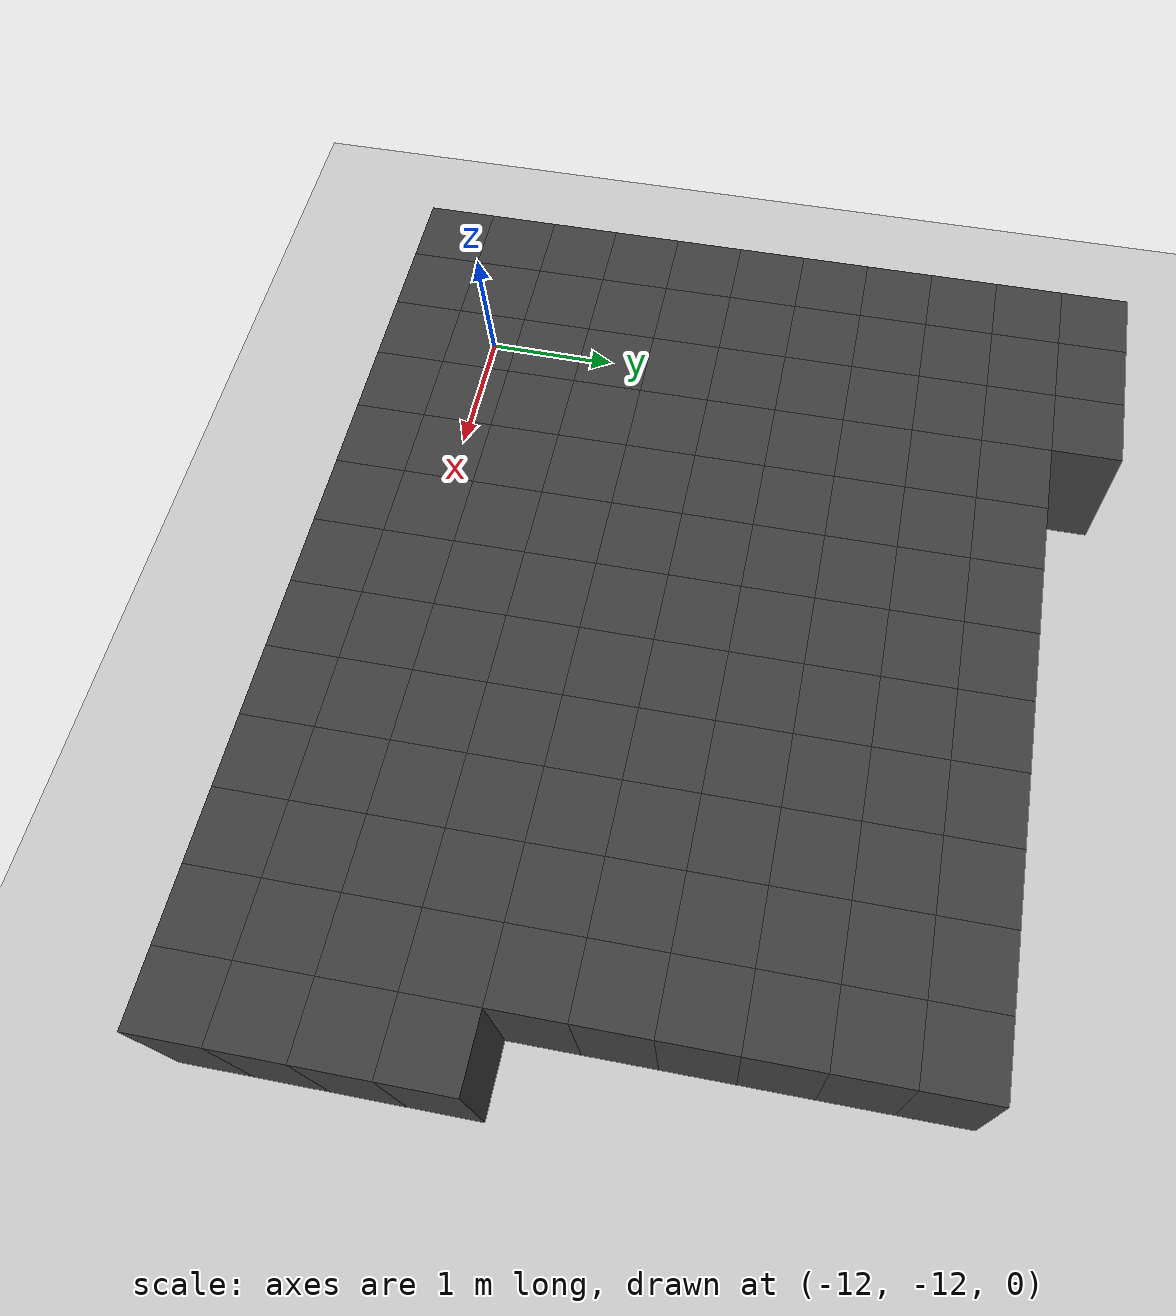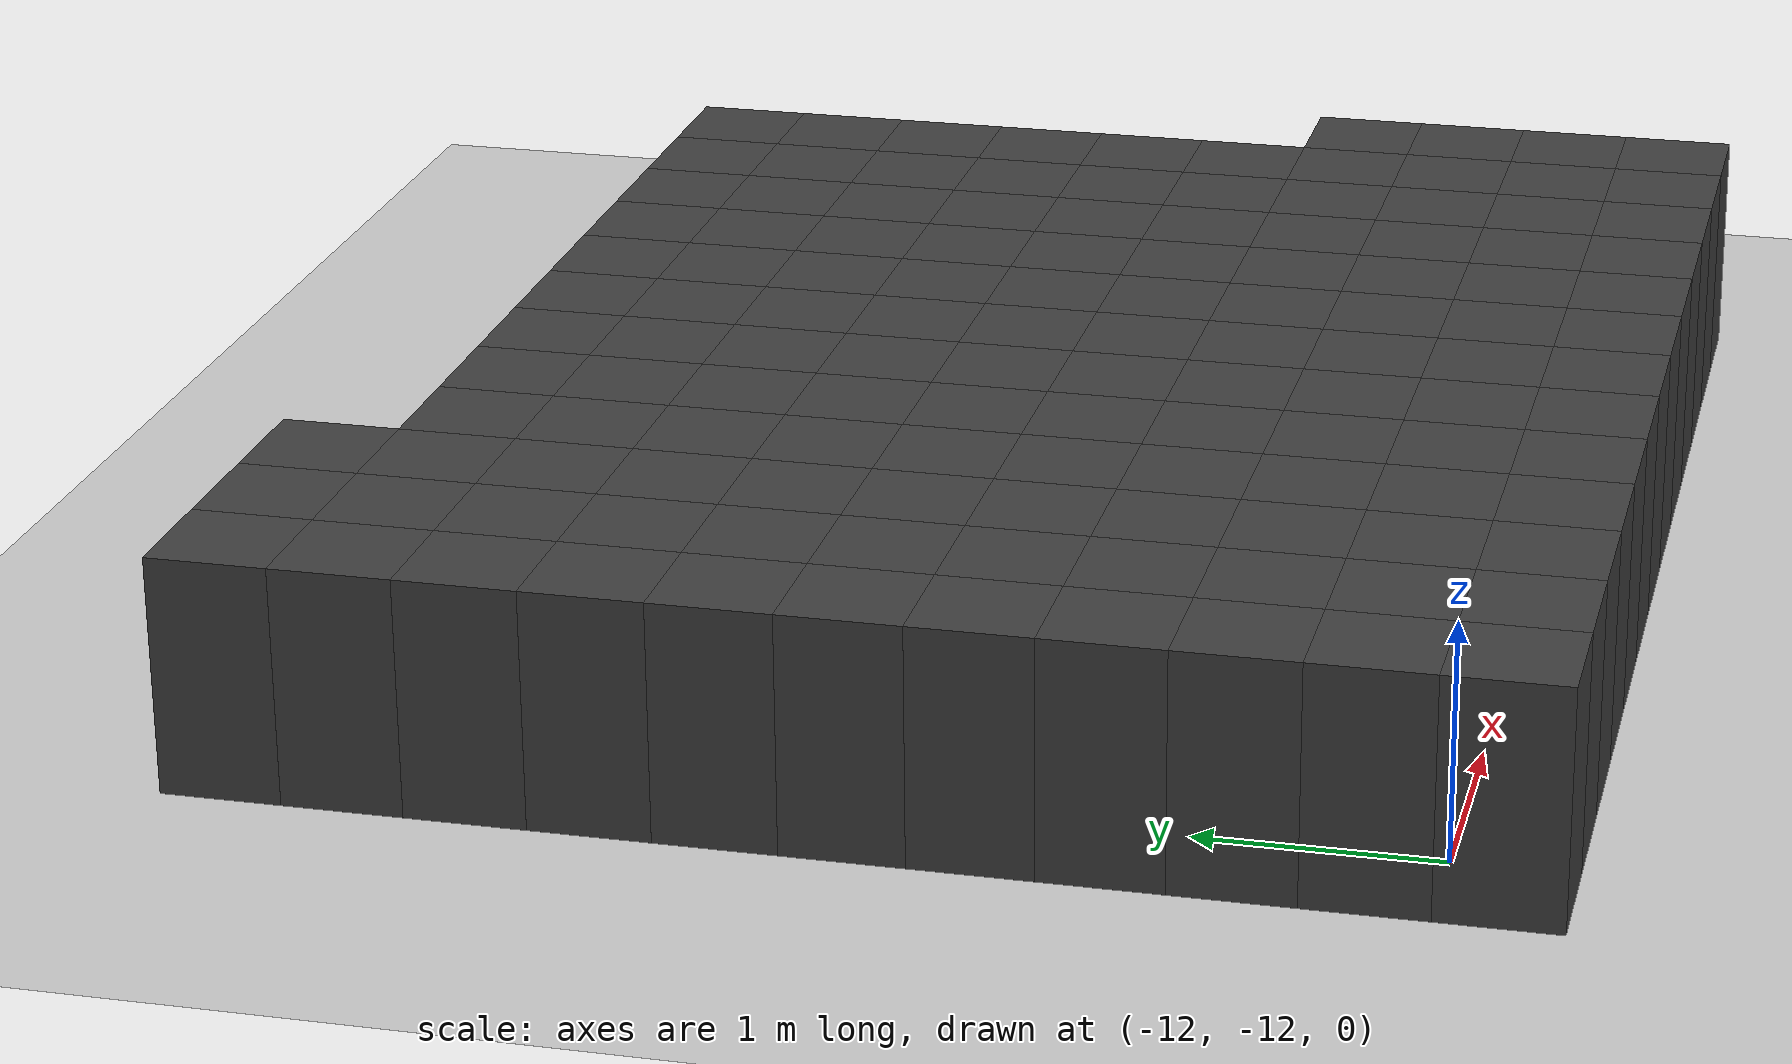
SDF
<sdf version="1.7">
 <world name="map_12356">
  <model name="ground_plane">
   <static>true</static>
   <link name="link">
    <collision name="collision">
     <geometry><plane><normal>0 0 1</normal><size>200 200</size></plane></geometry>
    </collision>
    <visual name="visual">
     <geometry><plane><normal>0 0 1</normal><size>200 200</size></plane></geometry>
     <material><ambient>0.8 0.8 0.8 1</ambient><diffuse>0.8 0.8 0.8 1</diffuse></material>
    </visual>
   </link>
  </model>
  <model name="maze_environment">
   <static>true</static>
   <link name="wall_1522">
    <pose>-12.250 -7.250 0.500 0 0 0</pose>
    <collision name="col"><geometry><box><size>0.5 0.5 1.0</size></box></geometry></collision>
    <visual name="vis">
     <geometry><box><size>0.5 0.5 1.0</size></box></geometry>
     <material><ambient>0.15 0.15 0.15 1</ambient><diffuse>0.25 0.25 0.25 1</diffuse></material>
    </visual>
   </link>
   <link name="wall_1523">
    <pose>-11.750 -7.250 0.500 0 0 0</pose>
    <collision name="col"><geometry><box><size>0.5 0.5 1.0</size></box></geometry></collision>
    <visual name="vis">
     <geometry><box><size>0.5 0.5 1.0</size></box></geometry>
     <material><ambient>0.15 0.15 0.15 1</ambient><diffuse>0.25 0.25 0.25 1</diffuse></material>
    </visual>
   </link>
   <link name="wall_1524">
    <pose>-11.250 -7.250 0.500 0 0 0</pose>
    <collision name="col"><geometry><box><size>0.5 0.5 1.0</size></box></geometry></collision>
    <visual name="vis">
     <geometry><box><size>0.5 0.5 1.0</size></box></geometry>
     <material><ambient>0.15 0.15 0.15 1</ambient><diffuse>0.25 0.25 0.25 1</diffuse></material>
    </visual>
   </link>
   <link name="wall_1563">
    <pose>-12.250 -7.750 0.500 0 0 0</pose>
    <collision name="col"><geometry><box><size>0.5 0.5 1.0</size></box></geometry></collision>
    <visual name="vis">
     <geometry><box><size>0.5 0.5 1.0</size></box></geometry>
     <material><ambient>0.15 0.15 0.15 1</ambient><diffuse>0.25 0.25 0.25 1</diffuse></material>
    </visual>
   </link>
   <link name="wall_1564">
    <pose>-11.750 -7.750 0.500 0 0 0</pose>
    <collision name="col"><geometry><box><size>0.5 0.5 1.0</size></box></geometry></collision>
    <visual name="vis">
     <geometry><box><size>0.5 0.5 1.0</size></box></geometry>
     <material><ambient>0.15 0.15 0.15 1</ambient><diffuse>0.25 0.25 0.25 1</diffuse></material>
    </visual>
   </link>
   <link name="wall_1565">
    <pose>-11.250 -7.750 0.500 0 0 0</pose>
    <collision name="col"><geometry><box><size>0.5 0.5 1.0</size></box></geometry></collision>
    <visual name="vis">
     <geometry><box><size>0.5 0.5 1.0</size></box></geometry>
     <material><ambient>0.15 0.15 0.15 1</ambient><diffuse>0.25 0.25 0.25 1</diffuse></material>
    </visual>
   </link>
   <link name="wall_1566">
    <pose>-10.750 -7.750 0.500 0 0 0</pose>
    <collision name="col"><geometry><box><size>0.5 0.5 1.0</size></box></geometry></collision>
    <visual name="vis">
     <geometry><box><size>0.5 0.5 1.0</size></box></geometry>
     <material><ambient>0.15 0.15 0.15 1</ambient><diffuse>0.25 0.25 0.25 1</diffuse></material>
    </visual>
   </link>
   <link name="wall_1567">
    <pose>-10.250 -7.750 0.500 0 0 0</pose>
    <collision name="col"><geometry><box><size>0.5 0.5 1.0</size></box></geometry></collision>
    <visual name="vis">
     <geometry><box><size>0.5 0.5 1.0</size></box></geometry>
     <material><ambient>0.15 0.15 0.15 1</ambient><diffuse>0.25 0.25 0.25 1</diffuse></material>
    </visual>
   </link>
   <link name="wall_1568">
    <pose>-9.750 -7.750 0.500 0 0 0</pose>
    <collision name="col"><geometry><box><size>0.5 0.5 1.0</size></box></geometry></collision>
    <visual name="vis">
     <geometry><box><size>0.5 0.5 1.0</size></box></geometry>
     <material><ambient>0.15 0.15 0.15 1</ambient><diffuse>0.25 0.25 0.25 1</diffuse></material>
    </visual>
   </link>
   <link name="wall_1569">
    <pose>-9.250 -7.750 0.500 0 0 0</pose>
    <collision name="col"><geometry><box><size>0.5 0.5 1.0</size></box></geometry></collision>
    <visual name="vis">
     <geometry><box><size>0.5 0.5 1.0</size></box></geometry>
     <material><ambient>0.15 0.15 0.15 1</ambient><diffuse>0.25 0.25 0.25 1</diffuse></material>
    </visual>
   </link>
   <link name="wall_1570">
    <pose>-8.750 -7.750 0.500 0 0 0</pose>
    <collision name="col"><geometry><box><size>0.5 0.5 1.0</size></box></geometry></collision>
    <visual name="vis">
     <geometry><box><size>0.5 0.5 1.0</size></box></geometry>
     <material><ambient>0.15 0.15 0.15 1</ambient><diffuse>0.25 0.25 0.25 1</diffuse></material>
    </visual>
   </link>
   <link name="wall_1571">
    <pose>-8.250 -7.750 0.500 0 0 0</pose>
    <collision name="col"><geometry><box><size>0.5 0.5 1.0</size></box></geometry></collision>
    <visual name="vis">
     <geometry><box><size>0.5 0.5 1.0</size></box></geometry>
     <material><ambient>0.15 0.15 0.15 1</ambient><diffuse>0.25 0.25 0.25 1</diffuse></material>
    </visual>
   </link>
   <link name="wall_1572">
    <pose>-7.750 -7.750 0.500 0 0 0</pose>
    <collision name="col"><geometry><box><size>0.5 0.5 1.0</size></box></geometry></collision>
    <visual name="vis">
     <geometry><box><size>0.5 0.5 1.0</size></box></geometry>
     <material><ambient>0.15 0.15 0.15 1</ambient><diffuse>0.25 0.25 0.25 1</diffuse></material>
    </visual>
   </link>
   <link name="wall_1573">
    <pose>-7.250 -7.750 0.500 0 0 0</pose>
    <collision name="col"><geometry><box><size>0.5 0.5 1.0</size></box></geometry></collision>
    <visual name="vis">
     <geometry><box><size>0.5 0.5 1.0</size></box></geometry>
     <material><ambient>0.15 0.15 0.15 1</ambient><diffuse>0.25 0.25 0.25 1</diffuse></material>
    </visual>
   </link>
   <link name="wall_1574">
    <pose>-6.750 -7.750 0.500 0 0 0</pose>
    <collision name="col"><geometry><box><size>0.5 0.5 1.0</size></box></geometry></collision>
    <visual name="vis">
     <geometry><box><size>0.5 0.5 1.0</size></box></geometry>
     <material><ambient>0.15 0.15 0.15 1</ambient><diffuse>0.25 0.25 0.25 1</diffuse></material>
    </visual>
   </link>
   <link name="wall_1608">
    <pose>-12.250 -8.250 0.500 0 0 0</pose>
    <collision name="col"><geometry><box><size>0.5 0.5 1.0</size></box></geometry></collision>
    <visual name="vis">
     <geometry><box><size>0.5 0.5 1.0</size></box></geometry>
     <material><ambient>0.15 0.15 0.15 1</ambient><diffuse>0.25 0.25 0.25 1</diffuse></material>
    </visual>
   </link>
   <link name="wall_1609">
    <pose>-11.750 -8.250 0.500 0 0 0</pose>
    <collision name="col"><geometry><box><size>0.5 0.5 1.0</size></box></geometry></collision>
    <visual name="vis">
     <geometry><box><size>0.5 0.5 1.0</size></box></geometry>
     <material><ambient>0.15 0.15 0.15 1</ambient><diffuse>0.25 0.25 0.25 1</diffuse></material>
    </visual>
   </link>
   <link name="wall_1610">
    <pose>-11.250 -8.250 0.500 0 0 0</pose>
    <collision name="col"><geometry><box><size>0.5 0.5 1.0</size></box></geometry></collision>
    <visual name="vis">
     <geometry><box><size>0.5 0.5 1.0</size></box></geometry>
     <material><ambient>0.15 0.15 0.15 1</ambient><diffuse>0.25 0.25 0.25 1</diffuse></material>
    </visual>
   </link>
   <link name="wall_1611">
    <pose>-10.750 -8.250 0.500 0 0 0</pose>
    <collision name="col"><geometry><box><size>0.5 0.5 1.0</size></box></geometry></collision>
    <visual name="vis">
     <geometry><box><size>0.5 0.5 1.0</size></box></geometry>
     <material><ambient>0.15 0.15 0.15 1</ambient><diffuse>0.25 0.25 0.25 1</diffuse></material>
    </visual>
   </link>
   <link name="wall_1612">
    <pose>-10.250 -8.250 0.500 0 0 0</pose>
    <collision name="col"><geometry><box><size>0.5 0.5 1.0</size></box></geometry></collision>
    <visual name="vis">
     <geometry><box><size>0.5 0.5 1.0</size></box></geometry>
     <material><ambient>0.15 0.15 0.15 1</ambient><diffuse>0.25 0.25 0.25 1</diffuse></material>
    </visual>
   </link>
   <link name="wall_1613">
    <pose>-9.750 -8.250 0.500 0 0 0</pose>
    <collision name="col"><geometry><box><size>0.5 0.5 1.0</size></box></geometry></collision>
    <visual name="vis">
     <geometry><box><size>0.5 0.5 1.0</size></box></geometry>
     <material><ambient>0.15 0.15 0.15 1</ambient><diffuse>0.25 0.25 0.25 1</diffuse></material>
    </visual>
   </link>
   <link name="wall_1614">
    <pose>-9.250 -8.250 0.500 0 0 0</pose>
    <collision name="col"><geometry><box><size>0.5 0.5 1.0</size></box></geometry></collision>
    <visual name="vis">
     <geometry><box><size>0.5 0.5 1.0</size></box></geometry>
     <material><ambient>0.15 0.15 0.15 1</ambient><diffuse>0.25 0.25 0.25 1</diffuse></material>
    </visual>
   </link>
   <link name="wall_1615">
    <pose>-8.750 -8.250 0.500 0 0 0</pose>
    <collision name="col"><geometry><box><size>0.5 0.5 1.0</size></box></geometry></collision>
    <visual name="vis">
     <geometry><box><size>0.5 0.5 1.0</size></box></geometry>
     <material><ambient>0.15 0.15 0.15 1</ambient><diffuse>0.25 0.25 0.25 1</diffuse></material>
    </visual>
   </link>
   <link name="wall_1616">
    <pose>-8.250 -8.250 0.500 0 0 0</pose>
    <collision name="col"><geometry><box><size>0.5 0.5 1.0</size></box></geometry></collision>
    <visual name="vis">
     <geometry><box><size>0.5 0.5 1.0</size></box></geometry>
     <material><ambient>0.15 0.15 0.15 1</ambient><diffuse>0.25 0.25 0.25 1</diffuse></material>
    </visual>
   </link>
   <link name="wall_1617">
    <pose>-7.750 -8.250 0.500 0 0 0</pose>
    <collision name="col"><geometry><box><size>0.5 0.5 1.0</size></box></geometry></collision>
    <visual name="vis">
     <geometry><box><size>0.5 0.5 1.0</size></box></geometry>
     <material><ambient>0.15 0.15 0.15 1</ambient><diffuse>0.25 0.25 0.25 1</diffuse></material>
    </visual>
   </link>
   <link name="wall_1618">
    <pose>-7.250 -8.250 0.500 0 0 0</pose>
    <collision name="col"><geometry><box><size>0.5 0.5 1.0</size></box></geometry></collision>
    <visual name="vis">
     <geometry><box><size>0.5 0.5 1.0</size></box></geometry>
     <material><ambient>0.15 0.15 0.15 1</ambient><diffuse>0.25 0.25 0.25 1</diffuse></material>
    </visual>
   </link>
   <link name="wall_1619">
    <pose>-6.750 -8.250 0.500 0 0 0</pose>
    <collision name="col"><geometry><box><size>0.5 0.5 1.0</size></box></geometry></collision>
    <visual name="vis">
     <geometry><box><size>0.5 0.5 1.0</size></box></geometry>
     <material><ambient>0.15 0.15 0.15 1</ambient><diffuse>0.25 0.25 0.25 1</diffuse></material>
    </visual>
   </link>
   <link name="wall_1657">
    <pose>-12.250 -8.750 0.500 0 0 0</pose>
    <collision name="col"><geometry><box><size>0.5 0.5 1.0</size></box></geometry></collision>
    <visual name="vis">
     <geometry><box><size>0.5 0.5 1.0</size></box></geometry>
     <material><ambient>0.15 0.15 0.15 1</ambient><diffuse>0.25 0.25 0.25 1</diffuse></material>
    </visual>
   </link>
   <link name="wall_1658">
    <pose>-11.750 -8.750 0.500 0 0 0</pose>
    <collision name="col"><geometry><box><size>0.5 0.5 1.0</size></box></geometry></collision>
    <visual name="vis">
     <geometry><box><size>0.5 0.5 1.0</size></box></geometry>
     <material><ambient>0.15 0.15 0.15 1</ambient><diffuse>0.25 0.25 0.25 1</diffuse></material>
    </visual>
   </link>
   <link name="wall_1659">
    <pose>-11.250 -8.750 0.500 0 0 0</pose>
    <collision name="col"><geometry><box><size>0.5 0.5 1.0</size></box></geometry></collision>
    <visual name="vis">
     <geometry><box><size>0.5 0.5 1.0</size></box></geometry>
     <material><ambient>0.15 0.15 0.15 1</ambient><diffuse>0.25 0.25 0.25 1</diffuse></material>
    </visual>
   </link>
   <link name="wall_1660">
    <pose>-10.750 -8.750 0.500 0 0 0</pose>
    <collision name="col"><geometry><box><size>0.5 0.5 1.0</size></box></geometry></collision>
    <visual name="vis">
     <geometry><box><size>0.5 0.5 1.0</size></box></geometry>
     <material><ambient>0.15 0.15 0.15 1</ambient><diffuse>0.25 0.25 0.25 1</diffuse></material>
    </visual>
   </link>
   <link name="wall_1661">
    <pose>-10.250 -8.750 0.500 0 0 0</pose>
    <collision name="col"><geometry><box><size>0.5 0.5 1.0</size></box></geometry></collision>
    <visual name="vis">
     <geometry><box><size>0.5 0.5 1.0</size></box></geometry>
     <material><ambient>0.15 0.15 0.15 1</ambient><diffuse>0.25 0.25 0.25 1</diffuse></material>
    </visual>
   </link>
   <link name="wall_1662">
    <pose>-9.750 -8.750 0.500 0 0 0</pose>
    <collision name="col"><geometry><box><size>0.5 0.5 1.0</size></box></geometry></collision>
    <visual name="vis">
     <geometry><box><size>0.5 0.5 1.0</size></box></geometry>
     <material><ambient>0.15 0.15 0.15 1</ambient><diffuse>0.25 0.25 0.25 1</diffuse></material>
    </visual>
   </link>
   <link name="wall_1663">
    <pose>-9.250 -8.750 0.500 0 0 0</pose>
    <collision name="col"><geometry><box><size>0.5 0.5 1.0</size></box></geometry></collision>
    <visual name="vis">
     <geometry><box><size>0.5 0.5 1.0</size></box></geometry>
     <material><ambient>0.15 0.15 0.15 1</ambient><diffuse>0.25 0.25 0.25 1</diffuse></material>
    </visual>
   </link>
   <link name="wall_1664">
    <pose>-8.750 -8.750 0.500 0 0 0</pose>
    <collision name="col"><geometry><box><size>0.5 0.5 1.0</size></box></geometry></collision>
    <visual name="vis">
     <geometry><box><size>0.5 0.5 1.0</size></box></geometry>
     <material><ambient>0.15 0.15 0.15 1</ambient><diffuse>0.25 0.25 0.25 1</diffuse></material>
    </visual>
   </link>
   <link name="wall_1665">
    <pose>-8.250 -8.750 0.500 0 0 0</pose>
    <collision name="col"><geometry><box><size>0.5 0.5 1.0</size></box></geometry></collision>
    <visual name="vis">
     <geometry><box><size>0.5 0.5 1.0</size></box></geometry>
     <material><ambient>0.15 0.15 0.15 1</ambient><diffuse>0.25 0.25 0.25 1</diffuse></material>
    </visual>
   </link>
   <link name="wall_1666">
    <pose>-7.750 -8.750 0.500 0 0 0</pose>
    <collision name="col"><geometry><box><size>0.5 0.5 1.0</size></box></geometry></collision>
    <visual name="vis">
     <geometry><box><size>0.5 0.5 1.0</size></box></geometry>
     <material><ambient>0.15 0.15 0.15 1</ambient><diffuse>0.25 0.25 0.25 1</diffuse></material>
    </visual>
   </link>
   <link name="wall_1667">
    <pose>-7.250 -8.750 0.500 0 0 0</pose>
    <collision name="col"><geometry><box><size>0.5 0.5 1.0</size></box></geometry></collision>
    <visual name="vis">
     <geometry><box><size>0.5 0.5 1.0</size></box></geometry>
     <material><ambient>0.15 0.15 0.15 1</ambient><diffuse>0.25 0.25 0.25 1</diffuse></material>
    </visual>
   </link>
   <link name="wall_1668">
    <pose>-6.750 -8.750 0.500 0 0 0</pose>
    <collision name="col"><geometry><box><size>0.5 0.5 1.0</size></box></geometry></collision>
    <visual name="vis">
     <geometry><box><size>0.5 0.5 1.0</size></box></geometry>
     <material><ambient>0.15 0.15 0.15 1</ambient><diffuse>0.25 0.25 0.25 1</diffuse></material>
    </visual>
   </link>
   <link name="wall_1706">
    <pose>-12.250 -9.250 0.500 0 0 0</pose>
    <collision name="col"><geometry><box><size>0.5 0.5 1.0</size></box></geometry></collision>
    <visual name="vis">
     <geometry><box><size>0.5 0.5 1.0</size></box></geometry>
     <material><ambient>0.15 0.15 0.15 1</ambient><diffuse>0.25 0.25 0.25 1</diffuse></material>
    </visual>
   </link>
   <link name="wall_1707">
    <pose>-11.750 -9.250 0.500 0 0 0</pose>
    <collision name="col"><geometry><box><size>0.5 0.5 1.0</size></box></geometry></collision>
    <visual name="vis">
     <geometry><box><size>0.5 0.5 1.0</size></box></geometry>
     <material><ambient>0.15 0.15 0.15 1</ambient><diffuse>0.25 0.25 0.25 1</diffuse></material>
    </visual>
   </link>
   <link name="wall_1708">
    <pose>-11.250 -9.250 0.500 0 0 0</pose>
    <collision name="col"><geometry><box><size>0.5 0.5 1.0</size></box></geometry></collision>
    <visual name="vis">
     <geometry><box><size>0.5 0.5 1.0</size></box></geometry>
     <material><ambient>0.15 0.15 0.15 1</ambient><diffuse>0.25 0.25 0.25 1</diffuse></material>
    </visual>
   </link>
   <link name="wall_1709">
    <pose>-10.750 -9.250 0.500 0 0 0</pose>
    <collision name="col"><geometry><box><size>0.5 0.5 1.0</size></box></geometry></collision>
    <visual name="vis">
     <geometry><box><size>0.5 0.5 1.0</size></box></geometry>
     <material><ambient>0.15 0.15 0.15 1</ambient><diffuse>0.25 0.25 0.25 1</diffuse></material>
    </visual>
   </link>
   <link name="wall_1710">
    <pose>-10.250 -9.250 0.500 0 0 0</pose>
    <collision name="col"><geometry><box><size>0.5 0.5 1.0</size></box></geometry></collision>
    <visual name="vis">
     <geometry><box><size>0.5 0.5 1.0</size></box></geometry>
     <material><ambient>0.15 0.15 0.15 1</ambient><diffuse>0.25 0.25 0.25 1</diffuse></material>
    </visual>
   </link>
   <link name="wall_1711">
    <pose>-9.750 -9.250 0.500 0 0 0</pose>
    <collision name="col"><geometry><box><size>0.5 0.5 1.0</size></box></geometry></collision>
    <visual name="vis">
     <geometry><box><size>0.5 0.5 1.0</size></box></geometry>
     <material><ambient>0.15 0.15 0.15 1</ambient><diffuse>0.25 0.25 0.25 1</diffuse></material>
    </visual>
   </link>
   <link name="wall_1712">
    <pose>-9.250 -9.250 0.500 0 0 0</pose>
    <collision name="col"><geometry><box><size>0.5 0.5 1.0</size></box></geometry></collision>
    <visual name="vis">
     <geometry><box><size>0.5 0.5 1.0</size></box></geometry>
     <material><ambient>0.15 0.15 0.15 1</ambient><diffuse>0.25 0.25 0.25 1</diffuse></material>
    </visual>
   </link>
   <link name="wall_1713">
    <pose>-8.750 -9.250 0.500 0 0 0</pose>
    <collision name="col"><geometry><box><size>0.5 0.5 1.0</size></box></geometry></collision>
    <visual name="vis">
     <geometry><box><size>0.5 0.5 1.0</size></box></geometry>
     <material><ambient>0.15 0.15 0.15 1</ambient><diffuse>0.25 0.25 0.25 1</diffuse></material>
    </visual>
   </link>
   <link name="wall_1714">
    <pose>-8.250 -9.250 0.500 0 0 0</pose>
    <collision name="col"><geometry><box><size>0.5 0.5 1.0</size></box></geometry></collision>
    <visual name="vis">
     <geometry><box><size>0.5 0.5 1.0</size></box></geometry>
     <material><ambient>0.15 0.15 0.15 1</ambient><diffuse>0.25 0.25 0.25 1</diffuse></material>
    </visual>
   </link>
   <link name="wall_1715">
    <pose>-7.750 -9.250 0.500 0 0 0</pose>
    <collision name="col"><geometry><box><size>0.5 0.5 1.0</size></box></geometry></collision>
    <visual name="vis">
     <geometry><box><size>0.5 0.5 1.0</size></box></geometry>
     <material><ambient>0.15 0.15 0.15 1</ambient><diffuse>0.25 0.25 0.25 1</diffuse></material>
    </visual>
   </link>
   <link name="wall_1716">
    <pose>-7.250 -9.250 0.500 0 0 0</pose>
    <collision name="col"><geometry><box><size>0.5 0.5 1.0</size></box></geometry></collision>
    <visual name="vis">
     <geometry><box><size>0.5 0.5 1.0</size></box></geometry>
     <material><ambient>0.15 0.15 0.15 1</ambient><diffuse>0.25 0.25 0.25 1</diffuse></material>
    </visual>
   </link>
   <link name="wall_1717">
    <pose>-6.750 -9.250 0.500 0 0 0</pose>
    <collision name="col"><geometry><box><size>0.5 0.5 1.0</size></box></geometry></collision>
    <visual name="vis">
     <geometry><box><size>0.5 0.5 1.0</size></box></geometry>
     <material><ambient>0.15 0.15 0.15 1</ambient><diffuse>0.25 0.25 0.25 1</diffuse></material>
    </visual>
   </link>
   <link name="wall_1755">
    <pose>-12.250 -9.750 0.500 0 0 0</pose>
    <collision name="col"><geometry><box><size>0.5 0.5 1.0</size></box></geometry></collision>
    <visual name="vis">
     <geometry><box><size>0.5 0.5 1.0</size></box></geometry>
     <material><ambient>0.15 0.15 0.15 1</ambient><diffuse>0.25 0.25 0.25 1</diffuse></material>
    </visual>
   </link>
   <link name="wall_1756">
    <pose>-11.750 -9.750 0.500 0 0 0</pose>
    <collision name="col"><geometry><box><size>0.5 0.5 1.0</size></box></geometry></collision>
    <visual name="vis">
     <geometry><box><size>0.5 0.5 1.0</size></box></geometry>
     <material><ambient>0.15 0.15 0.15 1</ambient><diffuse>0.25 0.25 0.25 1</diffuse></material>
    </visual>
   </link>
   <link name="wall_1757">
    <pose>-11.250 -9.750 0.500 0 0 0</pose>
    <collision name="col"><geometry><box><size>0.5 0.5 1.0</size></box></geometry></collision>
    <visual name="vis">
     <geometry><box><size>0.5 0.5 1.0</size></box></geometry>
     <material><ambient>0.15 0.15 0.15 1</ambient><diffuse>0.25 0.25 0.25 1</diffuse></material>
    </visual>
   </link>
   <link name="wall_1758">
    <pose>-10.750 -9.750 0.500 0 0 0</pose>
    <collision name="col"><geometry><box><size>0.5 0.5 1.0</size></box></geometry></collision>
    <visual name="vis">
     <geometry><box><size>0.5 0.5 1.0</size></box></geometry>
     <material><ambient>0.15 0.15 0.15 1</ambient><diffuse>0.25 0.25 0.25 1</diffuse></material>
    </visual>
   </link>
   <link name="wall_1759">
    <pose>-10.250 -9.750 0.500 0 0 0</pose>
    <collision name="col"><geometry><box><size>0.5 0.5 1.0</size></box></geometry></collision>
    <visual name="vis">
     <geometry><box><size>0.5 0.5 1.0</size></box></geometry>
     <material><ambient>0.15 0.15 0.15 1</ambient><diffuse>0.25 0.25 0.25 1</diffuse></material>
    </visual>
   </link>
   <link name="wall_1760">
    <pose>-9.750 -9.750 0.500 0 0 0</pose>
    <collision name="col"><geometry><box><size>0.5 0.5 1.0</size></box></geometry></collision>
    <visual name="vis">
     <geometry><box><size>0.5 0.5 1.0</size></box></geometry>
     <material><ambient>0.15 0.15 0.15 1</ambient><diffuse>0.25 0.25 0.25 1</diffuse></material>
    </visual>
   </link>
   <link name="wall_1761">
    <pose>-9.250 -9.750 0.500 0 0 0</pose>
    <collision name="col"><geometry><box><size>0.5 0.5 1.0</size></box></geometry></collision>
    <visual name="vis">
     <geometry><box><size>0.5 0.5 1.0</size></box></geometry>
     <material><ambient>0.15 0.15 0.15 1</ambient><diffuse>0.25 0.25 0.25 1</diffuse></material>
    </visual>
   </link>
   <link name="wall_1762">
    <pose>-8.750 -9.750 0.500 0 0 0</pose>
    <collision name="col"><geometry><box><size>0.5 0.5 1.0</size></box></geometry></collision>
    <visual name="vis">
     <geometry><box><size>0.5 0.5 1.0</size></box></geometry>
     <material><ambient>0.15 0.15 0.15 1</ambient><diffuse>0.25 0.25 0.25 1</diffuse></material>
    </visual>
   </link>
   <link name="wall_1763">
    <pose>-8.250 -9.750 0.500 0 0 0</pose>
    <collision name="col"><geometry><box><size>0.5 0.5 1.0</size></box></geometry></collision>
    <visual name="vis">
     <geometry><box><size>0.5 0.5 1.0</size></box></geometry>
     <material><ambient>0.15 0.15 0.15 1</ambient><diffuse>0.25 0.25 0.25 1</diffuse></material>
    </visual>
   </link>
   <link name="wall_1764">
    <pose>-7.750 -9.750 0.500 0 0 0</pose>
    <collision name="col"><geometry><box><size>0.5 0.5 1.0</size></box></geometry></collision>
    <visual name="vis">
     <geometry><box><size>0.5 0.5 1.0</size></box></geometry>
     <material><ambient>0.15 0.15 0.15 1</ambient><diffuse>0.25 0.25 0.25 1</diffuse></material>
    </visual>
   </link>
   <link name="wall_1765">
    <pose>-7.250 -9.750 0.500 0 0 0</pose>
    <collision name="col"><geometry><box><size>0.5 0.5 1.0</size></box></geometry></collision>
    <visual name="vis">
     <geometry><box><size>0.5 0.5 1.0</size></box></geometry>
     <material><ambient>0.15 0.15 0.15 1</ambient><diffuse>0.25 0.25 0.25 1</diffuse></material>
    </visual>
   </link>
   <link name="wall_1766">
    <pose>-6.750 -9.750 0.500 0 0 0</pose>
    <collision name="col"><geometry><box><size>0.5 0.5 1.0</size></box></geometry></collision>
    <visual name="vis">
     <geometry><box><size>0.5 0.5 1.0</size></box></geometry>
     <material><ambient>0.15 0.15 0.15 1</ambient><diffuse>0.25 0.25 0.25 1</diffuse></material>
    </visual>
   </link>
   <link name="wall_1804">
    <pose>-12.250 -10.250 0.500 0 0 0</pose>
    <collision name="col"><geometry><box><size>0.5 0.5 1.0</size></box></geometry></collision>
    <visual name="vis">
     <geometry><box><size>0.5 0.5 1.0</size></box></geometry>
     <material><ambient>0.15 0.15 0.15 1</ambient><diffuse>0.25 0.25 0.25 1</diffuse></material>
    </visual>
   </link>
   <link name="wall_1805">
    <pose>-11.750 -10.250 0.500 0 0 0</pose>
    <collision name="col"><geometry><box><size>0.5 0.5 1.0</size></box></geometry></collision>
    <visual name="vis">
     <geometry><box><size>0.5 0.5 1.0</size></box></geometry>
     <material><ambient>0.15 0.15 0.15 1</ambient><diffuse>0.25 0.25 0.25 1</diffuse></material>
    </visual>
   </link>
   <link name="wall_1806">
    <pose>-11.250 -10.250 0.500 0 0 0</pose>
    <collision name="col"><geometry><box><size>0.5 0.5 1.0</size></box></geometry></collision>
    <visual name="vis">
     <geometry><box><size>0.5 0.5 1.0</size></box></geometry>
     <material><ambient>0.15 0.15 0.15 1</ambient><diffuse>0.25 0.25 0.25 1</diffuse></material>
    </visual>
   </link>
   <link name="wall_1807">
    <pose>-10.750 -10.250 0.500 0 0 0</pose>
    <collision name="col"><geometry><box><size>0.5 0.5 1.0</size></box></geometry></collision>
    <visual name="vis">
     <geometry><box><size>0.5 0.5 1.0</size></box></geometry>
     <material><ambient>0.15 0.15 0.15 1</ambient><diffuse>0.25 0.25 0.25 1</diffuse></material>
    </visual>
   </link>
   <link name="wall_1808">
    <pose>-10.250 -10.250 0.500 0 0 0</pose>
    <collision name="col"><geometry><box><size>0.5 0.5 1.0</size></box></geometry></collision>
    <visual name="vis">
     <geometry><box><size>0.5 0.5 1.0</size></box></geometry>
     <material><ambient>0.15 0.15 0.15 1</ambient><diffuse>0.25 0.25 0.25 1</diffuse></material>
    </visual>
   </link>
   <link name="wall_1809">
    <pose>-9.750 -10.250 0.500 0 0 0</pose>
    <collision name="col"><geometry><box><size>0.5 0.5 1.0</size></box></geometry></collision>
    <visual name="vis">
     <geometry><box><size>0.5 0.5 1.0</size></box></geometry>
     <material><ambient>0.15 0.15 0.15 1</ambient><diffuse>0.25 0.25 0.25 1</diffuse></material>
    </visual>
   </link>
   <link name="wall_1810">
    <pose>-9.250 -10.250 0.500 0 0 0</pose>
    <collision name="col"><geometry><box><size>0.5 0.5 1.0</size></box></geometry></collision>
    <visual name="vis">
     <geometry><box><size>0.5 0.5 1.0</size></box></geometry>
     <material><ambient>0.15 0.15 0.15 1</ambient><diffuse>0.25 0.25 0.25 1</diffuse></material>
    </visual>
   </link>
   <link name="wall_1811">
    <pose>-8.750 -10.250 0.500 0 0 0</pose>
    <collision name="col"><geometry><box><size>0.5 0.5 1.0</size></box></geometry></collision>
    <visual name="vis">
     <geometry><box><size>0.5 0.5 1.0</size></box></geometry>
     <material><ambient>0.15 0.15 0.15 1</ambient><diffuse>0.25 0.25 0.25 1</diffuse></material>
    </visual>
   </link>
   <link name="wall_1812">
    <pose>-8.250 -10.250 0.500 0 0 0</pose>
    <collision name="col"><geometry><box><size>0.5 0.5 1.0</size></box></geometry></collision>
    <visual name="vis">
     <geometry><box><size>0.5 0.5 1.0</size></box></geometry>
     <material><ambient>0.15 0.15 0.15 1</ambient><diffuse>0.25 0.25 0.25 1</diffuse></material>
    </visual>
   </link>
   <link name="wall_1813">
    <pose>-7.750 -10.250 0.500 0 0 0</pose>
    <collision name="col"><geometry><box><size>0.5 0.5 1.0</size></box></geometry></collision>
    <visual name="vis">
     <geometry><box><size>0.5 0.5 1.0</size></box></geometry>
     <material><ambient>0.15 0.15 0.15 1</ambient><diffuse>0.25 0.25 0.25 1</diffuse></material>
    </visual>
   </link>
   <link name="wall_1814">
    <pose>-7.250 -10.250 0.500 0 0 0</pose>
    <collision name="col"><geometry><box><size>0.5 0.5 1.0</size></box></geometry></collision>
    <visual name="vis">
     <geometry><box><size>0.5 0.5 1.0</size></box></geometry>
     <material><ambient>0.15 0.15 0.15 1</ambient><diffuse>0.25 0.25 0.25 1</diffuse></material>
    </visual>
   </link>
   <link name="wall_1815">
    <pose>-6.750 -10.250 0.500 0 0 0</pose>
    <collision name="col"><geometry><box><size>0.5 0.5 1.0</size></box></geometry></collision>
    <visual name="vis">
     <geometry><box><size>0.5 0.5 1.0</size></box></geometry>
     <material><ambient>0.15 0.15 0.15 1</ambient><diffuse>0.25 0.25 0.25 1</diffuse></material>
    </visual>
   </link>
   <link name="wall_1853">
    <pose>-12.250 -10.750 0.500 0 0 0</pose>
    <collision name="col"><geometry><box><size>0.5 0.5 1.0</size></box></geometry></collision>
    <visual name="vis">
     <geometry><box><size>0.5 0.5 1.0</size></box></geometry>
     <material><ambient>0.15 0.15 0.15 1</ambient><diffuse>0.25 0.25 0.25 1</diffuse></material>
    </visual>
   </link>
   <link name="wall_1854">
    <pose>-11.750 -10.750 0.500 0 0 0</pose>
    <collision name="col"><geometry><box><size>0.5 0.5 1.0</size></box></geometry></collision>
    <visual name="vis">
     <geometry><box><size>0.5 0.5 1.0</size></box></geometry>
     <material><ambient>0.15 0.15 0.15 1</ambient><diffuse>0.25 0.25 0.25 1</diffuse></material>
    </visual>
   </link>
   <link name="wall_1855">
    <pose>-11.250 -10.750 0.500 0 0 0</pose>
    <collision name="col"><geometry><box><size>0.5 0.5 1.0</size></box></geometry></collision>
    <visual name="vis">
     <geometry><box><size>0.5 0.5 1.0</size></box></geometry>
     <material><ambient>0.15 0.15 0.15 1</ambient><diffuse>0.25 0.25 0.25 1</diffuse></material>
    </visual>
   </link>
   <link name="wall_1856">
    <pose>-10.750 -10.750 0.500 0 0 0</pose>
    <collision name="col"><geometry><box><size>0.5 0.5 1.0</size></box></geometry></collision>
    <visual name="vis">
     <geometry><box><size>0.5 0.5 1.0</size></box></geometry>
     <material><ambient>0.15 0.15 0.15 1</ambient><diffuse>0.25 0.25 0.25 1</diffuse></material>
    </visual>
   </link>
   <link name="wall_1857">
    <pose>-10.250 -10.750 0.500 0 0 0</pose>
    <collision name="col"><geometry><box><size>0.5 0.5 1.0</size></box></geometry></collision>
    <visual name="vis">
     <geometry><box><size>0.5 0.5 1.0</size></box></geometry>
     <material><ambient>0.15 0.15 0.15 1</ambient><diffuse>0.25 0.25 0.25 1</diffuse></material>
    </visual>
   </link>
   <link name="wall_1858">
    <pose>-9.750 -10.750 0.500 0 0 0</pose>
    <collision name="col"><geometry><box><size>0.5 0.5 1.0</size></box></geometry></collision>
    <visual name="vis">
     <geometry><box><size>0.5 0.5 1.0</size></box></geometry>
     <material><ambient>0.15 0.15 0.15 1</ambient><diffuse>0.25 0.25 0.25 1</diffuse></material>
    </visual>
   </link>
   <link name="wall_1859">
    <pose>-9.250 -10.750 0.500 0 0 0</pose>
    <collision name="col"><geometry><box><size>0.5 0.5 1.0</size></box></geometry></collision>
    <visual name="vis">
     <geometry><box><size>0.5 0.5 1.0</size></box></geometry>
     <material><ambient>0.15 0.15 0.15 1</ambient><diffuse>0.25 0.25 0.25 1</diffuse></material>
    </visual>
   </link>
   <link name="wall_1860">
    <pose>-8.750 -10.750 0.500 0 0 0</pose>
    <collision name="col"><geometry><box><size>0.5 0.5 1.0</size></box></geometry></collision>
    <visual name="vis">
     <geometry><box><size>0.5 0.5 1.0</size></box></geometry>
     <material><ambient>0.15 0.15 0.15 1</ambient><diffuse>0.25 0.25 0.25 1</diffuse></material>
    </visual>
   </link>
   <link name="wall_1861">
    <pose>-8.250 -10.750 0.500 0 0 0</pose>
    <collision name="col"><geometry><box><size>0.5 0.5 1.0</size></box></geometry></collision>
    <visual name="vis">
     <geometry><box><size>0.5 0.5 1.0</size></box></geometry>
     <material><ambient>0.15 0.15 0.15 1</ambient><diffuse>0.25 0.25 0.25 1</diffuse></material>
    </visual>
   </link>
   <link name="wall_1862">
    <pose>-7.750 -10.750 0.500 0 0 0</pose>
    <collision name="col"><geometry><box><size>0.5 0.5 1.0</size></box></geometry></collision>
    <visual name="vis">
     <geometry><box><size>0.5 0.5 1.0</size></box></geometry>
     <material><ambient>0.15 0.15 0.15 1</ambient><diffuse>0.25 0.25 0.25 1</diffuse></material>
    </visual>
   </link>
   <link name="wall_1863">
    <pose>-7.250 -10.750 0.500 0 0 0</pose>
    <collision name="col"><geometry><box><size>0.5 0.5 1.0</size></box></geometry></collision>
    <visual name="vis">
     <geometry><box><size>0.5 0.5 1.0</size></box></geometry>
     <material><ambient>0.15 0.15 0.15 1</ambient><diffuse>0.25 0.25 0.25 1</diffuse></material>
    </visual>
   </link>
   <link name="wall_1864">
    <pose>-6.750 -10.750 0.500 0 0 0</pose>
    <collision name="col"><geometry><box><size>0.5 0.5 1.0</size></box></geometry></collision>
    <visual name="vis">
     <geometry><box><size>0.5 0.5 1.0</size></box></geometry>
     <material><ambient>0.15 0.15 0.15 1</ambient><diffuse>0.25 0.25 0.25 1</diffuse></material>
    </visual>
   </link>
   <link name="wall_1865">
    <pose>-6.250 -10.750 0.500 0 0 0</pose>
    <collision name="col"><geometry><box><size>0.5 0.5 1.0</size></box></geometry></collision>
    <visual name="vis">
     <geometry><box><size>0.5 0.5 1.0</size></box></geometry>
     <material><ambient>0.15 0.15 0.15 1</ambient><diffuse>0.25 0.25 0.25 1</diffuse></material>
    </visual>
   </link>
   <link name="wall_1899">
    <pose>-12.250 -11.250 0.500 0 0 0</pose>
    <collision name="col"><geometry><box><size>0.5 0.5 1.0</size></box></geometry></collision>
    <visual name="vis">
     <geometry><box><size>0.5 0.5 1.0</size></box></geometry>
     <material><ambient>0.15 0.15 0.15 1</ambient><diffuse>0.25 0.25 0.25 1</diffuse></material>
    </visual>
   </link>
   <link name="wall_1900">
    <pose>-11.750 -11.250 0.500 0 0 0</pose>
    <collision name="col"><geometry><box><size>0.5 0.5 1.0</size></box></geometry></collision>
    <visual name="vis">
     <geometry><box><size>0.5 0.5 1.0</size></box></geometry>
     <material><ambient>0.15 0.15 0.15 1</ambient><diffuse>0.25 0.25 0.25 1</diffuse></material>
    </visual>
   </link>
   <link name="wall_1901">
    <pose>-11.250 -11.250 0.500 0 0 0</pose>
    <collision name="col"><geometry><box><size>0.5 0.5 1.0</size></box></geometry></collision>
    <visual name="vis">
     <geometry><box><size>0.5 0.5 1.0</size></box></geometry>
     <material><ambient>0.15 0.15 0.15 1</ambient><diffuse>0.25 0.25 0.25 1</diffuse></material>
    </visual>
   </link>
   <link name="wall_1902">
    <pose>-10.750 -11.250 0.500 0 0 0</pose>
    <collision name="col"><geometry><box><size>0.5 0.5 1.0</size></box></geometry></collision>
    <visual name="vis">
     <geometry><box><size>0.5 0.5 1.0</size></box></geometry>
     <material><ambient>0.15 0.15 0.15 1</ambient><diffuse>0.25 0.25 0.25 1</diffuse></material>
    </visual>
   </link>
   <link name="wall_1903">
    <pose>-10.250 -11.250 0.500 0 0 0</pose>
    <collision name="col"><geometry><box><size>0.5 0.5 1.0</size></box></geometry></collision>
    <visual name="vis">
     <geometry><box><size>0.5 0.5 1.0</size></box></geometry>
     <material><ambient>0.15 0.15 0.15 1</ambient><diffuse>0.25 0.25 0.25 1</diffuse></material>
    </visual>
   </link>
   <link name="wall_1904">
    <pose>-9.750 -11.250 0.500 0 0 0</pose>
    <collision name="col"><geometry><box><size>0.5 0.5 1.0</size></box></geometry></collision>
    <visual name="vis">
     <geometry><box><size>0.5 0.5 1.0</size></box></geometry>
     <material><ambient>0.15 0.15 0.15 1</ambient><diffuse>0.25 0.25 0.25 1</diffuse></material>
    </visual>
   </link>
   <link name="wall_1905">
    <pose>-9.250 -11.250 0.500 0 0 0</pose>
    <collision name="col"><geometry><box><size>0.5 0.5 1.0</size></box></geometry></collision>
    <visual name="vis">
     <geometry><box><size>0.5 0.5 1.0</size></box></geometry>
     <material><ambient>0.15 0.15 0.15 1</ambient><diffuse>0.25 0.25 0.25 1</diffuse></material>
    </visual>
   </link>
   <link name="wall_1906">
    <pose>-8.750 -11.250 0.500 0 0 0</pose>
    <collision name="col"><geometry><box><size>0.5 0.5 1.0</size></box></geometry></collision>
    <visual name="vis">
     <geometry><box><size>0.5 0.5 1.0</size></box></geometry>
     <material><ambient>0.15 0.15 0.15 1</ambient><diffuse>0.25 0.25 0.25 1</diffuse></material>
    </visual>
   </link>
   <link name="wall_1907">
    <pose>-8.250 -11.250 0.500 0 0 0</pose>
    <collision name="col"><geometry><box><size>0.5 0.5 1.0</size></box></geometry></collision>
    <visual name="vis">
     <geometry><box><size>0.5 0.5 1.0</size></box></geometry>
     <material><ambient>0.15 0.15 0.15 1</ambient><diffuse>0.25 0.25 0.25 1</diffuse></material>
    </visual>
   </link>
   <link name="wall_1908">
    <pose>-7.750 -11.250 0.500 0 0 0</pose>
    <collision name="col"><geometry><box><size>0.5 0.5 1.0</size></box></geometry></collision>
    <visual name="vis">
     <geometry><box><size>0.5 0.5 1.0</size></box></geometry>
     <material><ambient>0.15 0.15 0.15 1</ambient><diffuse>0.25 0.25 0.25 1</diffuse></material>
    </visual>
   </link>
   <link name="wall_1909">
    <pose>-7.250 -11.250 0.500 0 0 0</pose>
    <collision name="col"><geometry><box><size>0.5 0.5 1.0</size></box></geometry></collision>
    <visual name="vis">
     <geometry><box><size>0.5 0.5 1.0</size></box></geometry>
     <material><ambient>0.15 0.15 0.15 1</ambient><diffuse>0.25 0.25 0.25 1</diffuse></material>
    </visual>
   </link>
   <link name="wall_1910">
    <pose>-6.750 -11.250 0.500 0 0 0</pose>
    <collision name="col"><geometry><box><size>0.5 0.5 1.0</size></box></geometry></collision>
    <visual name="vis">
     <geometry><box><size>0.5 0.5 1.0</size></box></geometry>
     <material><ambient>0.15 0.15 0.15 1</ambient><diffuse>0.25 0.25 0.25 1</diffuse></material>
    </visual>
   </link>
   <link name="wall_1911">
    <pose>-6.250 -11.250 0.500 0 0 0</pose>
    <collision name="col"><geometry><box><size>0.5 0.5 1.0</size></box></geometry></collision>
    <visual name="vis">
     <geometry><box><size>0.5 0.5 1.0</size></box></geometry>
     <material><ambient>0.15 0.15 0.15 1</ambient><diffuse>0.25 0.25 0.25 1</diffuse></material>
    </visual>
   </link>
   <link name="wall_1945">
    <pose>-12.250 -11.750 0.500 0 0 0</pose>
    <collision name="col"><geometry><box><size>0.5 0.5 1.0</size></box></geometry></collision>
    <visual name="vis">
     <geometry><box><size>0.5 0.5 1.0</size></box></geometry>
     <material><ambient>0.15 0.15 0.15 1</ambient><diffuse>0.25 0.25 0.25 1</diffuse></material>
    </visual>
   </link>
   <link name="wall_1946">
    <pose>-11.750 -11.750 0.500 0 0 0</pose>
    <collision name="col"><geometry><box><size>0.5 0.5 1.0</size></box></geometry></collision>
    <visual name="vis">
     <geometry><box><size>0.5 0.5 1.0</size></box></geometry>
     <material><ambient>0.15 0.15 0.15 1</ambient><diffuse>0.25 0.25 0.25 1</diffuse></material>
    </visual>
   </link>
   <link name="wall_1947">
    <pose>-11.250 -11.750 0.500 0 0 0</pose>
    <collision name="col"><geometry><box><size>0.5 0.5 1.0</size></box></geometry></collision>
    <visual name="vis">
     <geometry><box><size>0.5 0.5 1.0</size></box></geometry>
     <material><ambient>0.15 0.15 0.15 1</ambient><diffuse>0.25 0.25 0.25 1</diffuse></material>
    </visual>
   </link>
   <link name="wall_1948">
    <pose>-10.750 -11.750 0.500 0 0 0</pose>
    <collision name="col"><geometry><box><size>0.5 0.5 1.0</size></box></geometry></collision>
    <visual name="vis">
     <geometry><box><size>0.5 0.5 1.0</size></box></geometry>
     <material><ambient>0.15 0.15 0.15 1</ambient><diffuse>0.25 0.25 0.25 1</diffuse></material>
    </visual>
   </link>
   <link name="wall_1949">
    <pose>-10.250 -11.750 0.500 0 0 0</pose>
    <collision name="col"><geometry><box><size>0.5 0.5 1.0</size></box></geometry></collision>
    <visual name="vis">
     <geometry><box><size>0.5 0.5 1.0</size></box></geometry>
     <material><ambient>0.15 0.15 0.15 1</ambient><diffuse>0.25 0.25 0.25 1</diffuse></material>
    </visual>
   </link>
   <link name="wall_1950">
    <pose>-9.750 -11.750 0.500 0 0 0</pose>
    <collision name="col"><geometry><box><size>0.5 0.5 1.0</size></box></geometry></collision>
    <visual name="vis">
     <geometry><box><size>0.5 0.5 1.0</size></box></geometry>
     <material><ambient>0.15 0.15 0.15 1</ambient><diffuse>0.25 0.25 0.25 1</diffuse></material>
    </visual>
   </link>
   <link name="wall_1951">
    <pose>-9.250 -11.750 0.500 0 0 0</pose>
    <collision name="col"><geometry><box><size>0.5 0.5 1.0</size></box></geometry></collision>
    <visual name="vis">
     <geometry><box><size>0.5 0.5 1.0</size></box></geometry>
     <material><ambient>0.15 0.15 0.15 1</ambient><diffuse>0.25 0.25 0.25 1</diffuse></material>
    </visual>
   </link>
   <link name="wall_1952">
    <pose>-8.750 -11.750 0.500 0 0 0</pose>
    <collision name="col"><geometry><box><size>0.5 0.5 1.0</size></box></geometry></collision>
    <visual name="vis">
     <geometry><box><size>0.5 0.5 1.0</size></box></geometry>
     <material><ambient>0.15 0.15 0.15 1</ambient><diffuse>0.25 0.25 0.25 1</diffuse></material>
    </visual>
   </link>
   <link name="wall_1953">
    <pose>-8.250 -11.750 0.500 0 0 0</pose>
    <collision name="col"><geometry><box><size>0.5 0.5 1.0</size></box></geometry></collision>
    <visual name="vis">
     <geometry><box><size>0.5 0.5 1.0</size></box></geometry>
     <material><ambient>0.15 0.15 0.15 1</ambient><diffuse>0.25 0.25 0.25 1</diffuse></material>
    </visual>
   </link>
   <link name="wall_1954">
    <pose>-7.750 -11.750 0.500 0 0 0</pose>
    <collision name="col"><geometry><box><size>0.5 0.5 1.0</size></box></geometry></collision>
    <visual name="vis">
     <geometry><box><size>0.5 0.5 1.0</size></box></geometry>
     <material><ambient>0.15 0.15 0.15 1</ambient><diffuse>0.25 0.25 0.25 1</diffuse></material>
    </visual>
   </link>
   <link name="wall_1955">
    <pose>-7.250 -11.750 0.500 0 0 0</pose>
    <collision name="col"><geometry><box><size>0.5 0.5 1.0</size></box></geometry></collision>
    <visual name="vis">
     <geometry><box><size>0.5 0.5 1.0</size></box></geometry>
     <material><ambient>0.15 0.15 0.15 1</ambient><diffuse>0.25 0.25 0.25 1</diffuse></material>
    </visual>
   </link>
   <link name="wall_1956">
    <pose>-6.750 -11.750 0.500 0 0 0</pose>
    <collision name="col"><geometry><box><size>0.5 0.5 1.0</size></box></geometry></collision>
    <visual name="vis">
     <geometry><box><size>0.5 0.5 1.0</size></box></geometry>
     <material><ambient>0.15 0.15 0.15 1</ambient><diffuse>0.25 0.25 0.25 1</diffuse></material>
    </visual>
   </link>
   <link name="wall_1957">
    <pose>-6.250 -11.750 0.500 0 0 0</pose>
    <collision name="col"><geometry><box><size>0.5 0.5 1.0</size></box></geometry></collision>
    <visual name="vis">
     <geometry><box><size>0.5 0.5 1.0</size></box></geometry>
     <material><ambient>0.15 0.15 0.15 1</ambient><diffuse>0.25 0.25 0.25 1</diffuse></material>
    </visual>
   </link>
   <link name="wall_1992">
    <pose>-12.250 -12.250 0.500 0 0 0</pose>
    <collision name="col"><geometry><box><size>0.5 0.5 1.0</size></box></geometry></collision>
    <visual name="vis">
     <geometry><box><size>0.5 0.5 1.0</size></box></geometry>
     <material><ambient>0.15 0.15 0.15 1</ambient><diffuse>0.25 0.25 0.25 1</diffuse></material>
    </visual>
   </link>
   <link name="wall_1993">
    <pose>-11.750 -12.250 0.500 0 0 0</pose>
    <collision name="col"><geometry><box><size>0.5 0.5 1.0</size></box></geometry></collision>
    <visual name="vis">
     <geometry><box><size>0.5 0.5 1.0</size></box></geometry>
     <material><ambient>0.15 0.15 0.15 1</ambient><diffuse>0.25 0.25 0.25 1</diffuse></material>
    </visual>
   </link>
   <link name="wall_1994">
    <pose>-11.250 -12.250 0.500 0 0 0</pose>
    <collision name="col"><geometry><box><size>0.5 0.5 1.0</size></box></geometry></collision>
    <visual name="vis">
     <geometry><box><size>0.5 0.5 1.0</size></box></geometry>
     <material><ambient>0.15 0.15 0.15 1</ambient><diffuse>0.25 0.25 0.25 1</diffuse></material>
    </visual>
   </link>
   <link name="wall_1995">
    <pose>-10.750 -12.250 0.500 0 0 0</pose>
    <collision name="col"><geometry><box><size>0.5 0.5 1.0</size></box></geometry></collision>
    <visual name="vis">
     <geometry><box><size>0.5 0.5 1.0</size></box></geometry>
     <material><ambient>0.15 0.15 0.15 1</ambient><diffuse>0.25 0.25 0.25 1</diffuse></material>
    </visual>
   </link>
   <link name="wall_1996">
    <pose>-10.250 -12.250 0.500 0 0 0</pose>
    <collision name="col"><geometry><box><size>0.5 0.5 1.0</size></box></geometry></collision>
    <visual name="vis">
     <geometry><box><size>0.5 0.5 1.0</size></box></geometry>
     <material><ambient>0.15 0.15 0.15 1</ambient><diffuse>0.25 0.25 0.25 1</diffuse></material>
    </visual>
   </link>
   <link name="wall_1997">
    <pose>-9.750 -12.250 0.500 0 0 0</pose>
    <collision name="col"><geometry><box><size>0.5 0.5 1.0</size></box></geometry></collision>
    <visual name="vis">
     <geometry><box><size>0.5 0.5 1.0</size></box></geometry>
     <material><ambient>0.15 0.15 0.15 1</ambient><diffuse>0.25 0.25 0.25 1</diffuse></material>
    </visual>
   </link>
   <link name="wall_1998">
    <pose>-9.250 -12.250 0.500 0 0 0</pose>
    <collision name="col"><geometry><box><size>0.5 0.5 1.0</size></box></geometry></collision>
    <visual name="vis">
     <geometry><box><size>0.5 0.5 1.0</size></box></geometry>
     <material><ambient>0.15 0.15 0.15 1</ambient><diffuse>0.25 0.25 0.25 1</diffuse></material>
    </visual>
   </link>
   <link name="wall_1999">
    <pose>-8.750 -12.250 0.500 0 0 0</pose>
    <collision name="col"><geometry><box><size>0.5 0.5 1.0</size></box></geometry></collision>
    <visual name="vis">
     <geometry><box><size>0.5 0.5 1.0</size></box></geometry>
     <material><ambient>0.15 0.15 0.15 1</ambient><diffuse>0.25 0.25 0.25 1</diffuse></material>
    </visual>
   </link>
   <link name="wall_2000">
    <pose>-8.250 -12.250 0.500 0 0 0</pose>
    <collision name="col"><geometry><box><size>0.5 0.5 1.0</size></box></geometry></collision>
    <visual name="vis">
     <geometry><box><size>0.5 0.5 1.0</size></box></geometry>
     <material><ambient>0.15 0.15 0.15 1</ambient><diffuse>0.25 0.25 0.25 1</diffuse></material>
    </visual>
   </link>
   <link name="wall_2001">
    <pose>-7.750 -12.250 0.500 0 0 0</pose>
    <collision name="col"><geometry><box><size>0.5 0.5 1.0</size></box></geometry></collision>
    <visual name="vis">
     <geometry><box><size>0.5 0.5 1.0</size></box></geometry>
     <material><ambient>0.15 0.15 0.15 1</ambient><diffuse>0.25 0.25 0.25 1</diffuse></material>
    </visual>
   </link>
   <link name="wall_2002">
    <pose>-7.250 -12.250 0.500 0 0 0</pose>
    <collision name="col"><geometry><box><size>0.5 0.5 1.0</size></box></geometry></collision>
    <visual name="vis">
     <geometry><box><size>0.5 0.5 1.0</size></box></geometry>
     <material><ambient>0.15 0.15 0.15 1</ambient><diffuse>0.25 0.25 0.25 1</diffuse></material>
    </visual>
   </link>
   <link name="wall_2003">
    <pose>-6.750 -12.250 0.500 0 0 0</pose>
    <collision name="col"><geometry><box><size>0.5 0.5 1.0</size></box></geometry></collision>
    <visual name="vis">
     <geometry><box><size>0.5 0.5 1.0</size></box></geometry>
     <material><ambient>0.15 0.15 0.15 1</ambient><diffuse>0.25 0.25 0.25 1</diffuse></material>
    </visual>
   </link>
   <link name="wall_2004">
    <pose>-6.250 -12.250 0.500 0 0 0</pose>
    <collision name="col"><geometry><box><size>0.5 0.5 1.0</size></box></geometry></collision>
    <visual name="vis">
     <geometry><box><size>0.5 0.5 1.0</size></box></geometry>
     <material><ambient>0.15 0.15 0.15 1</ambient><diffuse>0.25 0.25 0.25 1</diffuse></material>
    </visual>
   </link>
  </model>
 </world>
</sdf>
